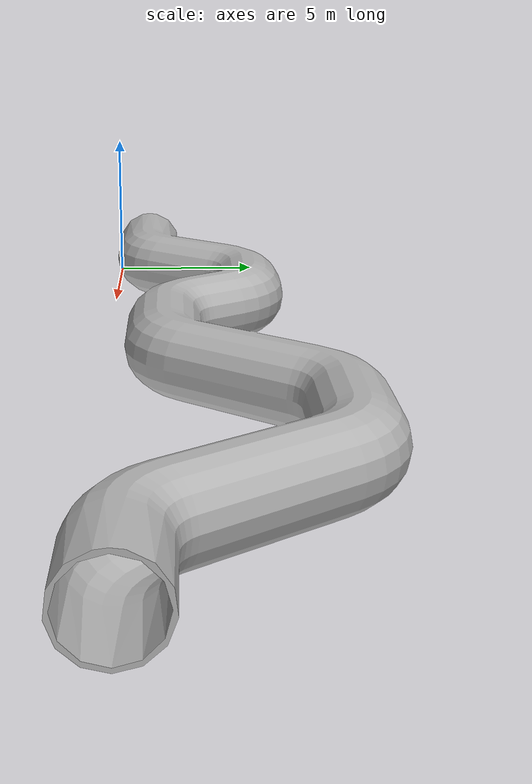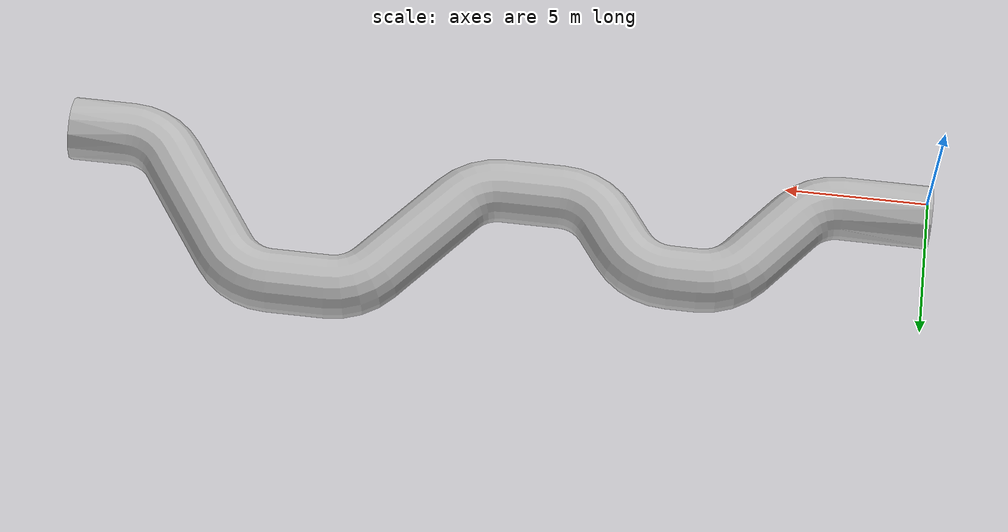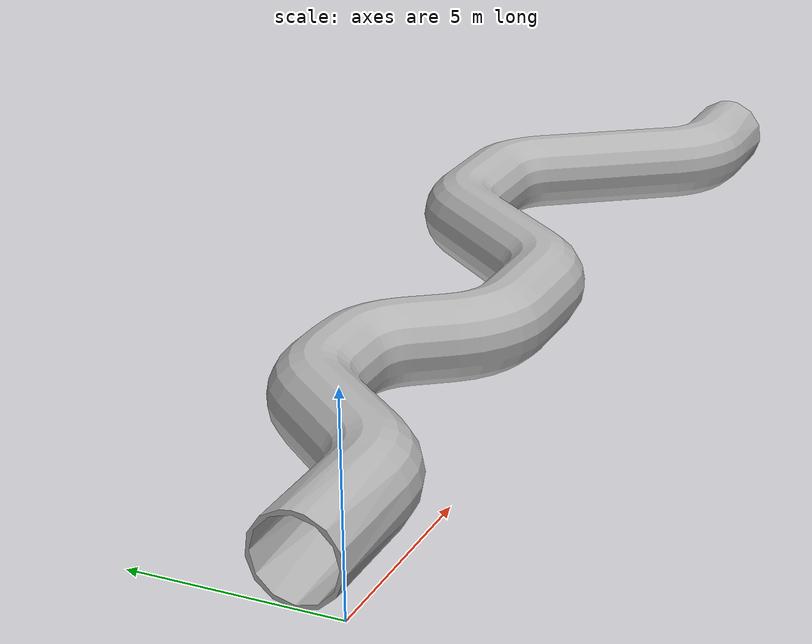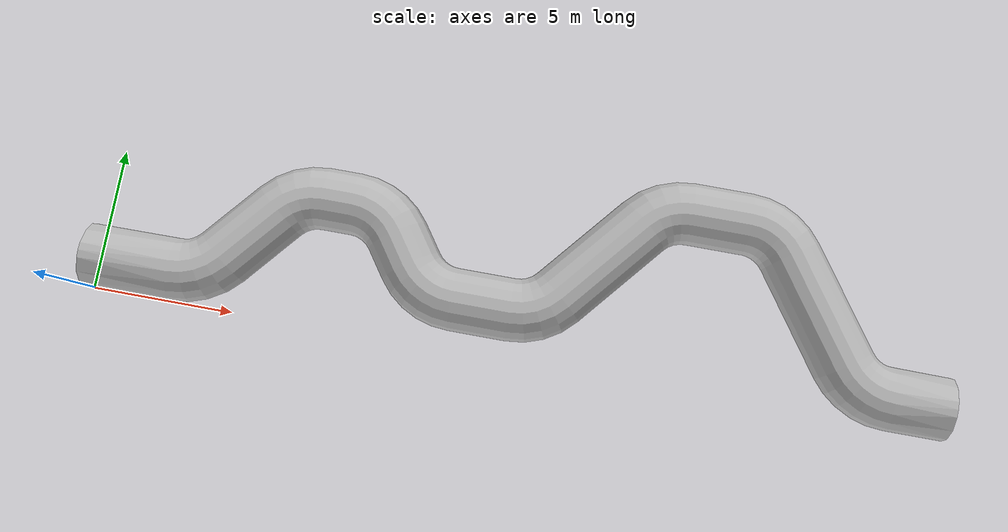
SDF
<?xml version='1.0'?>
<sdf version="1.6">

  <model name="pipeline_xyq">
    <static>true</static>

    <link name="link">
      <pose>0 0 0 0 0 0</pose>
      <collision name="collision">
        <geometry>
          <mesh>
            <uri>model://pipeline_xyq/meshes/pipeline.dae</uri>
          </mesh>
        </geometry>
      </collision>

      <visual name="visual">
        <geometry>
          <mesh>
            <uri>model://pipeline_xyq/meshes/pipeline.dae</uri>
          </mesh>
        </geometry>
      </visual>
    </link>

  </model>
</sdf>
